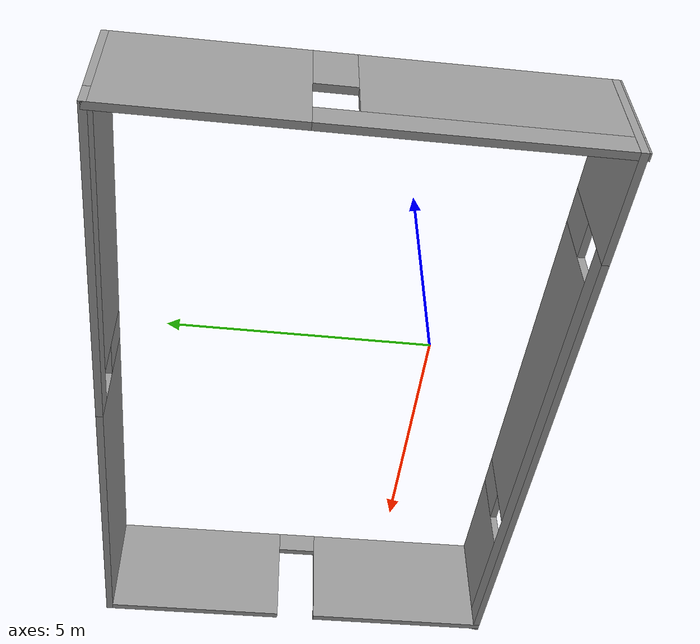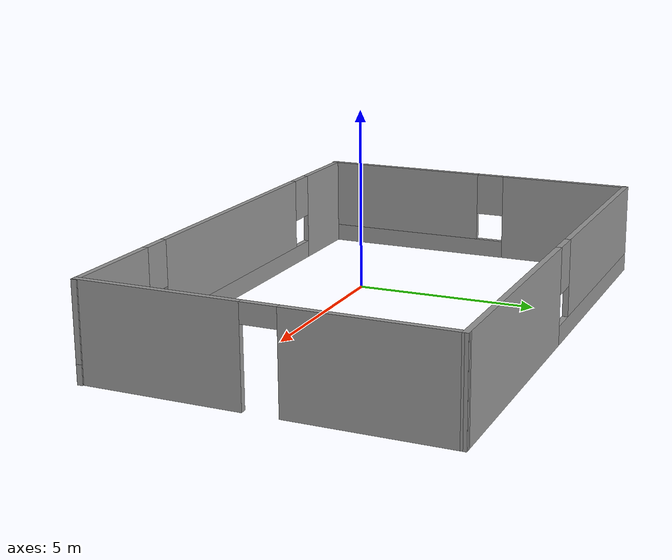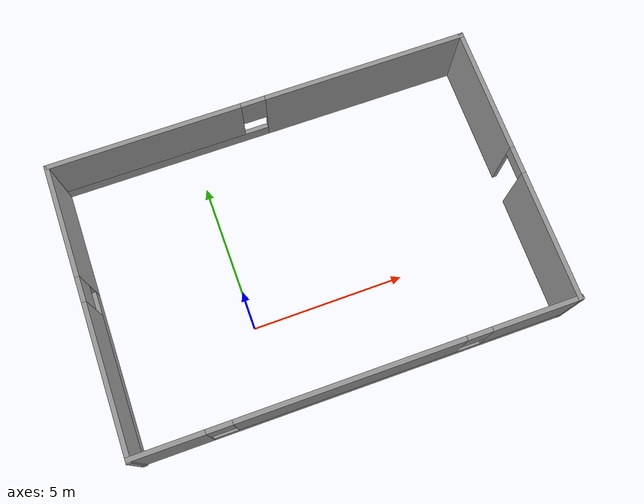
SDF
<?xml version='1.0'?>
<sdf version='1.7'>
  <model name='model'>
    <pose>2.42504 1.76632 0 0 -0 0</pose>
    <link name='Wall_4'>
      <pose>0.035036 4.58239 0 0 -0 3.13647</pose>
      <visual name='Wall_4_Visual_0'>
        <pose>-3.56385 0 1.25 0 -0 0</pose>
        <geometry>
          <box>
            <size>6.74802 0.15 2.5</size>
          </box>
        </geometry>
        <material>
          <script>
            <uri>file://media/materials/scripts/gazebo.material</uri>
            <name>Gazebo/Grey</name>
          </script>
          <ambient>1 1 1 1</ambient>
        </material>
        <meta>
          <layer>0</layer>
        </meta>
      </visual>
      <collision name='Wall_4_Collision_0'>
        <geometry>
          <box>
            <size>6.74802 0.15 2.5</size>
          </box>
        </geometry>
        <pose>-3.56385 0 1.25 0 -0 0</pose>
      </collision>
      <visual name='Wall_4_Visual_1'>
        <pose>3.37401 0 0.25 0 -0 0</pose>
        <geometry>
          <box>
            <size>7.1277 0.15 0.5</size>
          </box>
        </geometry>
        <material>
          <script>
            <uri>file://media/materials/scripts/gazebo.material</uri>
            <name>Gazebo/Grey</name>
          </script>
          <ambient>1 1 1 1</ambient>
        </material>
        <meta>
          <layer>0</layer>
        </meta>
      </visual>
      <collision name='Wall_4_Collision_1'>
        <geometry>
          <box>
            <size>7.1277 0.15 0.5</size>
          </box>
        </geometry>
        <pose>3.37401 0 0.25 0 -0 0</pose>
      </collision>
      <visual name='Wall_4_Visual_2'>
        <pose>3.77401 0 1.5 0 -0 0</pose>
        <geometry>
          <box>
            <size>6.3277 0.15 2</size>
          </box>
        </geometry>
        <material>
          <script>
            <uri>file://media/materials/scripts/gazebo.material</uri>
            <name>Gazebo/Grey</name>
          </script>
          <ambient>1 1 1 1</ambient>
        </material>
        <meta>
          <layer>0</layer>
        </meta>
      </visual>
      <collision name='Wall_4_Collision_2'>
        <geometry>
          <box>
            <size>6.3277 0.15 2</size>
          </box>
        </geometry>
        <pose>3.77401 0 1.5 0 -0 0</pose>
      </collision>
      <visual name='Wall_4_Visual_3'>
        <pose>0.210162 0 1.9 0 -0 0</pose>
        <geometry>
          <box>
            <size>0.8 0.15 1.2</size>
          </box>
        </geometry>
        <material>
          <script>
            <uri>file://media/materials/scripts/gazebo.material</uri>
            <name>Gazebo/Grey</name>
          </script>
          <ambient>1 1 1 1</ambient>
        </material>
        <meta>
          <layer>0</layer>
        </meta>
      </visual>
      <collision name='Wall_4_Collision_3'>
        <geometry>
          <box>
            <size>0.8 0.15 1.2</size>
          </box>
        </geometry>
        <pose>0.210162 0 1.9 0 -0 0</pose>
      </collision>
    </link>
    <link name='Wall_5'>
      <pose>-6.863 0.000238 0 0 -0 -1.57847</pose>
      <visual name='Wall_5_Visual_0'>
        <pose>-2.80822 0 1.25 0 -0 0</pose>
        <geometry>
          <box>
            <size>3.69813 0.15 2.5</size>
          </box>
        </geometry>
        <material>
          <script>
            <uri>file://media/materials/scripts/gazebo.material</uri>
            <name>Gazebo/Grey</name>
          </script>
          <ambient>1 1 1 1</ambient>
        </material>
        <meta>
          <layer>0</layer>
        </meta>
      </visual>
      <collision name='Wall_5_Collision_0'>
        <geometry>
          <box>
            <size>3.69813 0.15 2.5</size>
          </box>
        </geometry>
        <pose>-2.80822 0 1.25 0 -0 0</pose>
      </collision>
      <visual name='Wall_5_Visual_1'>
        <pose>1.84907 0 0.25 0 -0 0</pose>
        <geometry>
          <box>
            <size>5.61644 0.15 0.5</size>
          </box>
        </geometry>
        <material>
          <script>
            <uri>file://media/materials/scripts/gazebo.material</uri>
            <name>Gazebo/Grey</name>
          </script>
          <ambient>1 1 1 1</ambient>
        </material>
        <meta>
          <layer>0</layer>
        </meta>
      </visual>
      <collision name='Wall_5_Collision_1'>
        <geometry>
          <box>
            <size>5.61644 0.15 0.5</size>
          </box>
        </geometry>
        <pose>1.84907 0 0.25 0 -0 0</pose>
      </collision>
      <visual name='Wall_5_Visual_2'>
        <pose>2.24907 0 1.5 0 -0 0</pose>
        <geometry>
          <box>
            <size>4.81644 0.15 2</size>
          </box>
        </geometry>
        <material>
          <script>
            <uri>file://media/materials/scripts/gazebo.material</uri>
            <name>Gazebo/Grey</name>
          </script>
          <ambient>1 1 1 1</ambient>
        </material>
        <meta>
          <layer>0</layer>
        </meta>
      </visual>
      <collision name='Wall_5_Collision_2'>
        <geometry>
          <box>
            <size>4.81644 0.15 2</size>
          </box>
        </geometry>
        <pose>2.24907 0 1.5 0 -0 0</pose>
      </collision>
      <visual name='Wall_5_Visual_3'>
        <pose>-0.559154 0 1.9 0 -0 0</pose>
        <geometry>
          <box>
            <size>0.8 0.15 1.2</size>
          </box>
        </geometry>
        <material>
          <script>
            <uri>file://media/materials/scripts/gazebo.material</uri>
            <name>Gazebo/Grey</name>
          </script>
          <ambient>1 1 1 1</ambient>
        </material>
        <meta>
          <layer>0</layer>
        </meta>
      </visual>
      <collision name='Wall_5_Collision_3'>
        <geometry>
          <box>
            <size>0.8 0.15 1.2</size>
          </box>
        </geometry>
        <pose>-0.559154 0 1.9 0 -0 0</pose>
      </collision>
    </link>
    <link name='Wall_6'>
      <pose>-0.035321 -4.58191 0 0 -0 -0.005126</pose>
      <visual name='Wall_6_Visual_0'>
        <pose>-5.77985 0 1.25 0 -0 0</pose>
        <geometry>
          <box>
            <size>2.31602 0.15 2.5</size>
          </box>
        </geometry>
        <material>
          <script>
            <uri>file://media/materials/scripts/gazebo.material</uri>
            <name>Gazebo/Grey</name>
          </script>
          <ambient>1 1 1 1</ambient>
        </material>
        <meta>
          <layer>0</layer>
        </meta>
      </visual>
      <collision name='Wall_6_Collision_0'>
        <geometry>
          <box>
            <size>2.31602 0.15 2.5</size>
          </box>
        </geometry>
        <pose>-5.77985 0 1.25 0 -0 0</pose>
      </collision>
      <visual name='Wall_6_Visual_1'>
        <pose>1.15801 0 0.25 0 -0 0</pose>
        <geometry>
          <box>
            <size>11.5597 0.15 0.5</size>
          </box>
        </geometry>
        <material>
          <script>
            <uri>file://media/materials/scripts/gazebo.material</uri>
            <name>Gazebo/Grey</name>
          </script>
          <ambient>1 1 1 1</ambient>
        </material>
        <meta>
          <layer>0</layer>
        </meta>
      </visual>
      <collision name='Wall_6_Collision_1'>
        <geometry>
          <box>
            <size>11.5597 0.15 0.5</size>
          </box>
        </geometry>
        <pose>1.15801 0 0.25 0 -0 0</pose>
      </collision>
      <visual name='Wall_6_Visual_2'>
        <pose>-0.281241 0 1.5 0 -0 0</pose>
        <geometry>
          <box>
            <size>7.0812 0.15 2</size>
          </box>
        </geometry>
        <material>
          <script>
            <uri>file://media/materials/scripts/gazebo.material</uri>
            <name>Gazebo/Grey</name>
          </script>
          <ambient>1 1 1 1</ambient>
        </material>
        <meta>
          <layer>0</layer>
        </meta>
      </visual>
      <collision name='Wall_6_Collision_2'>
        <geometry>
          <box>
            <size>7.0812 0.15 2</size>
          </box>
        </geometry>
        <pose>-0.281241 0 1.5 0 -0 0</pose>
      </collision>
      <visual name='Wall_6_Visual_3'>
        <pose>5.49861 0 1.5 0 -0 0</pose>
        <geometry>
          <box>
            <size>2.8785 0.15 2</size>
          </box>
        </geometry>
        <material>
          <script>
            <uri>file://media/materials/scripts/gazebo.material</uri>
            <name>Gazebo/Grey</name>
          </script>
          <ambient>1 1 1 1</ambient>
        </material>
        <meta>
          <layer>0</layer>
        </meta>
      </visual>
      <collision name='Wall_6_Collision_3'>
        <geometry>
          <box>
            <size>2.8785 0.15 2</size>
          </box>
        </geometry>
        <pose>5.49861 0 1.5 0 -0 0</pose>
      </collision>
      <visual name='Wall_6_Visual_4'>
        <pose>-4.22184 0 1.9 0 -0 0</pose>
        <geometry>
          <box>
            <size>0.8 0.15 1.2</size>
          </box>
        </geometry>
        <material>
          <script>
            <uri>file://media/materials/scripts/gazebo.material</uri>
            <name>Gazebo/Grey</name>
          </script>
          <ambient>1 1 1 1</ambient>
        </material>
        <meta>
          <layer>0</layer>
        </meta>
      </visual>
      <collision name='Wall_6_Collision_4'>
        <geometry>
          <box>
            <size>0.8 0.15 1.2</size>
          </box>
        </geometry>
        <pose>-4.22184 0 1.9 0 -0 0</pose>
      </collision>
      <visual name='Wall_6_Visual_5'>
        <pose>3.65936 0 1.9 0 -0 0</pose>
        <geometry>
          <box>
            <size>0.8 0.15 1.2</size>
          </box>
        </geometry>
        <material>
          <script>
            <uri>file://media/materials/scripts/gazebo.material</uri>
            <name>Gazebo/Grey</name>
          </script>
          <ambient>1 1 1 1</ambient>
        </material>
        <meta>
          <layer>0</layer>
        </meta>
      </visual>
      <collision name='Wall_6_Collision_5'>
        <geometry>
          <box>
            <size>0.8 0.15 1.2</size>
          </box>
        </geometry>
        <pose>3.65936 0 1.9 0 -0 0</pose>
      </collision>
    </link>
    <link name='Wall_7'>
      <pose>6.84513 -0.034941 0 0 -0 1.55928</pose>
      <visual name='Wall_7_Visual_0'>
        <pose>-2.55408 0 1.25 0 -0 0</pose>
        <geometry>
          <box>
            <size>4.20675 0.15 2.5</size>
          </box>
        </geometry>
        <material>
          <script>
            <uri>file://media/materials/scripts/gazebo.material</uri>
            <name>Gazebo/Grey</name>
          </script>
          <ambient>1 1 1 1</ambient>
        </material>
        <meta>
          <layer>0</layer>
        </meta>
      </visual>
      <collision name='Wall_7_Collision_0'>
        <geometry>
          <box>
            <size>4.20675 0.15 2.5</size>
          </box>
        </geometry>
        <pose>-2.55408 0 1.25 0 -0 0</pose>
      </collision>
      <visual name='Wall_7_Visual_1'>
        <pose>2.55337 0 1.25 0 -0 0</pose>
        <geometry>
          <box>
            <size>4.20816 0.15 2.5</size>
          </box>
        </geometry>
        <material>
          <script>
            <uri>file://media/materials/scripts/gazebo.material</uri>
            <name>Gazebo/Grey</name>
          </script>
          <ambient>1 1 1 1</ambient>
        </material>
        <meta>
          <layer>0</layer>
        </meta>
      </visual>
      <collision name='Wall_7_Collision_1'>
        <geometry>
          <box>
            <size>4.20816 0.15 2.5</size>
          </box>
        </geometry>
        <pose>2.55337 0 1.25 0 -0 0</pose>
      </collision>
      <visual name='Wall_7_Visual_2'>
        <pose>-0.000708 0 2.25 0 -0 0</pose>
        <geometry>
          <box>
            <size>0.9 0.15 0.5</size>
          </box>
        </geometry>
        <material>
          <script>
            <uri>file://media/materials/scripts/gazebo.material</uri>
            <name>Gazebo/Grey</name>
          </script>
          <ambient>1 1 1 1</ambient>
        </material>
        <meta>
          <layer>0</layer>
        </meta>
      </visual>
      <collision name='Wall_7_Collision_2'>
        <geometry>
          <box>
            <size>0.9 0.15 0.5</size>
          </box>
        </geometry>
        <pose>-0.000708 0 2.25 0 -0 0</pose>
      </collision>
    </link>
    <static>1</static>
  </model>
</sdf>
